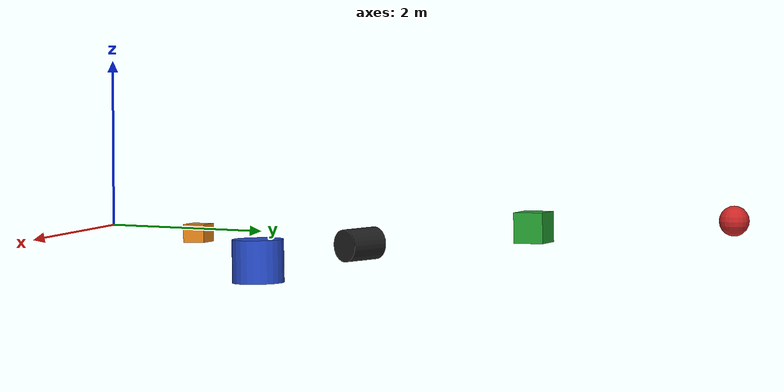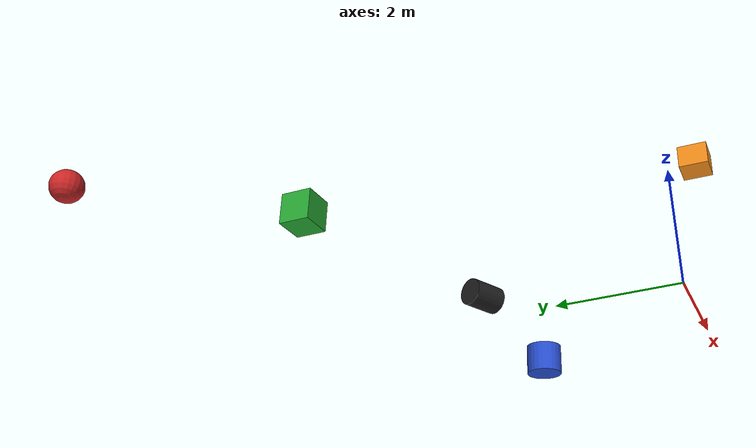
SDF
<?xml version='1.0'?>
<sdf version='1.7'>
  <model name='rc_model'>
    <link name='link'>
      <inertial>
        <mass>1</mass>
        <inertia>
          <ixx>0.1</ixx>
          <ixy>0</ixy>
          <ixz>0</ixz>
          <iyy>0.1</iyy>
          <iyz>0</iyz>
          <izz>0.1</izz>
        </inertia>
        <pose>0 0 0 0 -0 0</pose>
      </inertial>
      <self_collide>0</self_collide>
      <enable_wind>0</enable_wind>
      <kinematic>0</kinematic>
      <pose>-6.22121 5.85176 -0.284395 0 -2e-06 0</pose>
      <gravity>1</gravity>
      <visual name='visual'>
        <geometry>
          <sphere>
            <radius>0.2</radius>
          </sphere>
        </geometry>
        <material>
          <script>
            <name>Gazebo/Red</name>
            <uri>file://media/materials/scripts/gazebo.material</uri>
          </script>
          <shader type='pixel'>
            <normal_map>__default__</normal_map>
          </shader>
          <ambient>1 0 0 1</ambient>
          <diffuse>1 0 0 1</diffuse>
          <specular>0.1 0.1 0.1 1</specular>
          <emissive>0 0 0 1</emissive>
        </material>
        <pose>0 0 0 0 -0 0</pose>
        <transparency>0</transparency>
        <cast_shadows>1</cast_shadows>
      </visual>
      <collision name='collision'>
        <laser_retro>0</laser_retro>
        <max_contacts>10</max_contacts>
        <pose>0 0 0 0 -0 0</pose>
        <geometry>
          <sphere>
            <radius>0.5</radius>
          </sphere>
        </geometry>
        <surface>
          <friction>
            <ode>
              <mu>1</mu>
              <mu2>1</mu2>
              <fdir1>0 0 0</fdir1>
              <slip1>0</slip1>
              <slip2>0</slip2>
            </ode>
            <torsional>
              <coefficient>1</coefficient>
              <patch_radius>0</patch_radius>
              <surface_radius>0</surface_radius>
              <use_patch_radius>1</use_patch_radius>
              <ode>
                <slip>0</slip>
              </ode>
            </torsional>
          </friction>
          <bounce>
            <restitution_coefficient>0</restitution_coefficient>
            <threshold>1e+06</threshold>
          </bounce>
          <contact>
            <collide_without_contact>0</collide_without_contact>
            <collide_without_contact_bitmask>1</collide_without_contact_bitmask>
            <collide_bitmask>1</collide_bitmask>
            <ode>
              <soft_cfm>0</soft_cfm>
              <soft_erp>0.2</soft_erp>
              <kp>1e+13</kp>
              <kd>1</kd>
              <max_vel>0.01</max_vel>
              <min_depth>0</min_depth>
            </ode>
            <bullet>
              <split_impulse>1</split_impulse>
              <split_impulse_penetration_threshold>-0.01</split_impulse_penetration_threshold>
              <soft_cfm>0</soft_cfm>
              <soft_erp>0.2</soft_erp>
              <kp>1e+13</kp>
              <kd>1</kd>
            </bullet>
          </contact>
        </surface>
      </collision>
    </link>
    <link name='link_0'>
      <inertial>
        <mass>1</mass>
        <inertia>
          <ixx>0.166667</ixx>
          <ixy>0</ixy>
          <ixz>0</ixz>
          <iyy>0.166667</iyy>
          <iyz>0</iyz>
          <izz>0.166667</izz>
        </inertia>
        <pose>0 0 0 0 -0 0</pose>
      </inertial>
      <pose>-4.56747 3.68861 -0.301412 0.02863 -0.023748 0.007629</pose>
      <gravity>1</gravity>
      <self_collide>0</self_collide>
      <kinematic>0</kinematic>
      <enable_wind>0</enable_wind>
      <visual name='visual'>
        <pose>0 0 0 0 -0 0</pose>
        <geometry>
          <box>
            <size>0.4 0.4 0.4</size>
          </box>
        </geometry>
        <material>
          <lighting>1</lighting>
          <script>
            <uri>file://media/materials/scripts/gazebo.material</uri>
            <name>Gazebo/Green</name>
          </script>
          <shader type='pixel'>
            <normal_map>__default__</normal_map>
          </shader>
          <ambient>0 1 0 1</ambient>
          <diffuse>0 1 0 1</diffuse>
          <specular>0.1 0.1 0.1 1</specular>
          <emissive>0 0 0 1</emissive>
        </material>
        <transparency>0</transparency>
        <cast_shadows>1</cast_shadows>
      </visual>
      <collision name='collision'>
        <laser_retro>0</laser_retro>
        <max_contacts>10</max_contacts>
        <pose>0 0 0 0 -0 0</pose>
        <geometry>
          <box>
            <size>1 1 1</size>
          </box>
        </geometry>
        <surface>
          <friction>
            <ode>
              <mu>1</mu>
              <mu2>1</mu2>
              <fdir1>0 0 0</fdir1>
              <slip1>0</slip1>
              <slip2>0</slip2>
            </ode>
            <torsional>
              <coefficient>1</coefficient>
              <patch_radius>0</patch_radius>
              <surface_radius>0</surface_radius>
              <use_patch_radius>1</use_patch_radius>
              <ode>
                <slip>0</slip>
              </ode>
            </torsional>
          </friction>
          <bounce>
            <restitution_coefficient>0</restitution_coefficient>
            <threshold>1e+06</threshold>
          </bounce>
          <contact>
            <collide_without_contact>0</collide_without_contact>
            <collide_without_contact_bitmask>1</collide_without_contact_bitmask>
            <collide_bitmask>1</collide_bitmask>
            <ode>
              <soft_cfm>0</soft_cfm>
              <soft_erp>0.2</soft_erp>
              <kp>1e+13</kp>
              <kd>1</kd>
              <max_vel>0.01</max_vel>
              <min_depth>0</min_depth>
            </ode>
            <bullet>
              <split_impulse>1</split_impulse>
              <split_impulse_penetration_threshold>-0.01</split_impulse_penetration_threshold>
              <soft_cfm>0</soft_cfm>
              <soft_erp>0.2</soft_erp>
              <kp>1e+13</kp>
              <kd>1</kd>
            </bullet>
          </contact>
        </surface>
      </collision>
    </link>
    <link name='link_2'>
      <inertial>
        <mass>1</mass>
        <inertia>
          <ixx>0.145833</ixx>
          <ixy>0</ixy>
          <ixz>0</ixz>
          <iyy>0.145833</iyy>
          <iyz>0</iyz>
          <izz>0.125</izz>
        </inertia>
        <pose>0 0 0 0 -0 0</pose>
      </inertial>
      <pose>1.80551 2.83515 -0.138892 0.028631 -0.023748 0.007629</pose>
      <gravity>1</gravity>
      <self_collide>0</self_collide>
      <kinematic>0</kinematic>
      <enable_wind>0</enable_wind>
      <visual name='visual'>
        <pose>0 0 0 0 -0 0</pose>
        <geometry>
          <cylinder>
            <radius>0.3</radius>
            <length>0.5</length>
          </cylinder>
        </geometry>
        <material>
          <lighting>1</lighting>
          <script>
            <uri>file://media/materials/scripts/gazebo.material</uri>
            <name>Gazebo/Blue</name>
          </script>
          <shader type='pixel'>
            <normal_map>__default__</normal_map>
          </shader>
          <ambient>0 0 1 1</ambient>
          <diffuse>0 0 1 1</diffuse>
          <specular>0.1 0.1 0.1 1</specular>
          <emissive>0 0 0 1</emissive>
        </material>
        <transparency>0</transparency>
        <cast_shadows>1</cast_shadows>
      </visual>
      <collision name='collision'>
        <laser_retro>0</laser_retro>
        <max_contacts>10</max_contacts>
        <pose>0 0 0 0 -0 0</pose>
        <geometry>
          <cylinder>
            <radius>0.5</radius>
            <length>1</length>
          </cylinder>
        </geometry>
        <surface>
          <friction>
            <ode>
              <mu>1</mu>
              <mu2>1</mu2>
              <fdir1>0 0 0</fdir1>
              <slip1>0</slip1>
              <slip2>0</slip2>
            </ode>
            <torsional>
              <coefficient>1</coefficient>
              <patch_radius>0</patch_radius>
              <surface_radius>0</surface_radius>
              <use_patch_radius>1</use_patch_radius>
              <ode>
                <slip>0</slip>
              </ode>
            </torsional>
          </friction>
          <bounce>
            <restitution_coefficient>0</restitution_coefficient>
            <threshold>1e+06</threshold>
          </bounce>
          <contact>
            <collide_without_contact>0</collide_without_contact>
            <collide_without_contact_bitmask>1</collide_without_contact_bitmask>
            <collide_bitmask>1</collide_bitmask>
            <ode>
              <soft_cfm>0</soft_cfm>
              <soft_erp>0.2</soft_erp>
              <kp>1e+13</kp>
              <kd>1</kd>
              <max_vel>0.01</max_vel>
              <min_depth>0</min_depth>
            </ode>
            <bullet>
              <split_impulse>1</split_impulse>
              <split_impulse_penetration_threshold>-0.01</split_impulse_penetration_threshold>
              <soft_cfm>0</soft_cfm>
              <soft_erp>0.2</soft_erp>
              <kp>1e+13</kp>
              <kd>1</kd>
            </bullet>
          </contact>
        </surface>
      </collision>
    </link>
    <link name='link_3'>
      <inertial>
        <mass>1</mass>
        <inertia>
          <ixx>0.166667</ixx>
          <ixy>0</ixy>
          <ixz>0</ixz>
          <iyy>0.166667</iyy>
          <iyz>0</iyz>
          <izz>0.166667</izz>
        </inertia>
        <pose>0 0 0 0 -0 0</pose>
      </inertial>
      <pose>-3.98917 -0.863934 -0.504258 0.02863 -0.023748 0.007629</pose>
      <gravity>1</gravity>
      <self_collide>0</self_collide>
      <kinematic>0</kinematic>
      <enable_wind>0</enable_wind>
      <visual name='visual'>
        <pose>0 0 0 0 -0 0</pose>
        <geometry>
          <box>
            <size>0.3 0.3 0.24</size>
          </box>
        </geometry>
        <material>
          <lighting>1</lighting>
          <script>
            <uri>file://media/materials/scripts/gazebo.material</uri>
            <name>Gazebo/Orange</name>
          </script>
          <shader type='pixel'>
            <normal_map>__default__</normal_map>
          </shader>
          <ambient>1 0.509 0.047 1</ambient>
          <diffuse>1 0.509 0.047 1</diffuse>
          <specular>0.5 0.5 0.5 1</specular>
          <emissive>0 0 0 1</emissive>
        </material>
        <transparency>0</transparency>
        <cast_shadows>1</cast_shadows>
      </visual>
      <collision name='collision'>
        <laser_retro>0</laser_retro>
        <max_contacts>10</max_contacts>
        <pose>0 0 0 0 -0 0</pose>
        <geometry>
          <box>
            <size>1 1 1</size>
          </box>
        </geometry>
        <surface>
          <friction>
            <ode>
              <mu>1</mu>
              <mu2>1</mu2>
              <fdir1>0 0 0</fdir1>
              <slip1>0</slip1>
              <slip2>0</slip2>
            </ode>
            <torsional>
              <coefficient>1</coefficient>
              <patch_radius>0</patch_radius>
              <surface_radius>0</surface_radius>
              <use_patch_radius>1</use_patch_radius>
              <ode>
                <slip>0</slip>
              </ode>
            </torsional>
          </friction>
          <bounce>
            <restitution_coefficient>0</restitution_coefficient>
            <threshold>1e+06</threshold>
          </bounce>
          <contact>
            <collide_without_contact>0</collide_without_contact>
            <collide_without_contact_bitmask>1</collide_without_contact_bitmask>
            <collide_bitmask>1</collide_bitmask>
            <ode>
              <soft_cfm>0</soft_cfm>
              <soft_erp>0.2</soft_erp>
              <kp>1e+13</kp>
              <kd>1</kd>
              <max_vel>0.01</max_vel>
              <min_depth>0</min_depth>
            </ode>
            <bullet>
              <split_impulse>1</split_impulse>
              <split_impulse_penetration_threshold>-0.01</split_impulse_penetration_threshold>
              <soft_cfm>0</soft_cfm>
              <soft_erp>0.2</soft_erp>
              <kp>1e+13</kp>
              <kd>1</kd>
            </bullet>
          </contact>
        </surface>
      </collision>
    </link>
    <link name='link_5'>
      <inertial>
        <mass>1</mass>
        <inertia>
          <ixx>0.145833</ixx>
          <ixy>0</ixy>
          <ixz>0</ixz>
          <iyy>0.145833</iyy>
          <iyz>0</iyz>
          <izz>0.125</izz>
        </inertia>
        <pose>0 0 0 0 -0 0</pose>
      </inertial>
      <pose>-1.3539 2.68331 -0.257414 1.5601 0.03775 -2.00278</pose>
      <gravity>1</gravity>
      <self_collide>0</self_collide>
      <kinematic>0</kinematic>
      <enable_wind>0</enable_wind>
      <visual name='visual'>
        <pose>0 0 0 0 -0 0</pose>
        <geometry>
          <cylinder>
            <radius>0.2</radius>
            <length>0.5</length>
          </cylinder>
        </geometry>
        <material>
          <lighting>1</lighting>
          <script>
            <uri>file://media/materials/scripts/gazebo.material</uri>
            <name>Gazebo/Black</name>
          </script>
          <shader type='pixel'>
            <normal_map>__default__</normal_map>
          </shader>
          <ambient>0 0 0 1</ambient>
          <diffuse>0 0 0 1</diffuse>
          <specular>0.1 0.1 0.1 1</specular>
          <emissive>0 0 0 1</emissive>
        </material>
        <transparency>0</transparency>
        <cast_shadows>1</cast_shadows>
      </visual>
      <collision name='collision'>
        <laser_retro>0</laser_retro>
        <max_contacts>10</max_contacts>
        <pose>0 0 0 0 -0 0</pose>
        <geometry>
          <cylinder>
            <radius>0.5</radius>
            <length>1</length>
          </cylinder>
        </geometry>
        <surface>
          <friction>
            <ode>
              <mu>1</mu>
              <mu2>1</mu2>
              <fdir1>0 0 0</fdir1>
              <slip1>0</slip1>
              <slip2>0</slip2>
            </ode>
            <torsional>
              <coefficient>1</coefficient>
              <patch_radius>0</patch_radius>
              <surface_radius>0</surface_radius>
              <use_patch_radius>1</use_patch_radius>
              <ode>
                <slip>0</slip>
              </ode>
            </torsional>
          </friction>
          <bounce>
            <restitution_coefficient>0</restitution_coefficient>
            <threshold>1e+06</threshold>
          </bounce>
          <contact>
            <collide_without_contact>0</collide_without_contact>
            <collide_without_contact_bitmask>1</collide_without_contact_bitmask>
            <collide_bitmask>1</collide_bitmask>
            <ode>
              <soft_cfm>0</soft_cfm>
              <soft_erp>0.2</soft_erp>
              <kp>1e+13</kp>
              <kd>1</kd>
              <max_vel>0.01</max_vel>
              <min_depth>0</min_depth>
            </ode>
            <bullet>
              <split_impulse>1</split_impulse>
              <split_impulse_penetration_threshold>-0.01</split_impulse_penetration_threshold>
              <soft_cfm>0</soft_cfm>
              <soft_erp>0.2</soft_erp>
              <kp>1e+13</kp>
              <kd>1</kd>
            </bullet>
          </contact>
        </surface>
      </collision>
    </link>
    <static>0</static>
    <allow_auto_disable>1</allow_auto_disable>
  </model>
</sdf>
